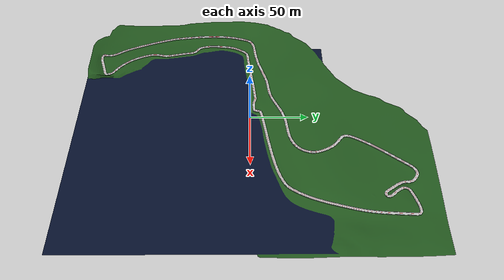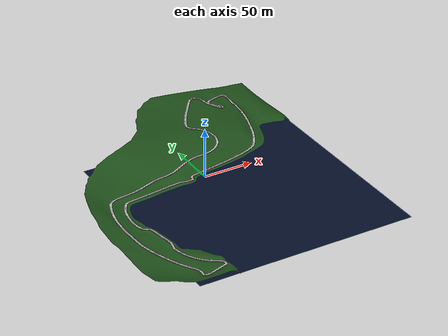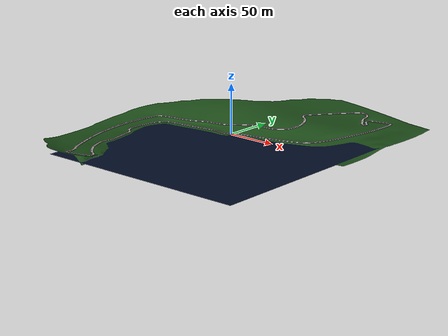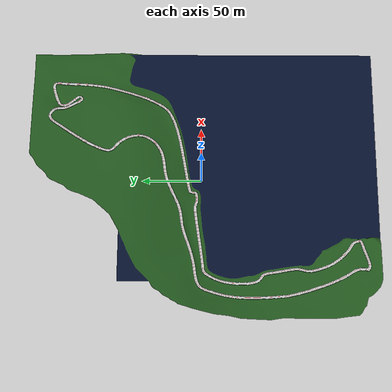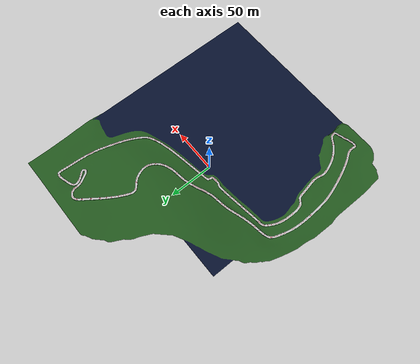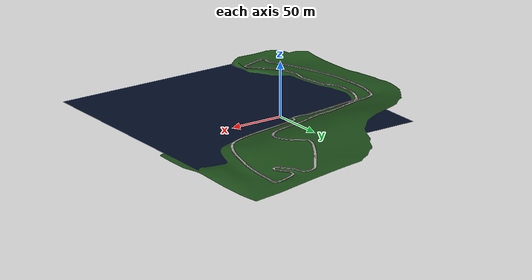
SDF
<?xml version="1.0" ?>

<sdf version="1.9">
  <world name="default">
    <plugin
      filename="gz-sim-physics-system"
      name="gz::sim::systems::Physics">
    </plugin>
    <plugin
      filename="gz-sim-scene-broadcaster-system"
      name="gz::sim::systems::SceneBroadcaster">
    </plugin>
    <plugin
      filename="gz-sim-user-commands-system"
      name="gz::sim::systems::UserCommands">
    </plugin>
    <plugin
      filename="gz-sim-sensors-system"
      name="gz::sim::systems::Sensors">
      <render_engine>ogre2</render_engine>
    </plugin>
    <plugin name='gz::sim::systems::Contact' filename='gz-sim-contact-system'/>

    <scene>
      <ambient>0.4 0.4 0.4 1</ambient>
      <background>0.7 0.7 0.7 1</background>
      <shadows>true</shadows>
      <grid>false</grid>
      <sky>
        <clouds>
          <speed>12</speed>
        </clouds>
      </sky>
    </scene>
    <include>
      <uri>model://monaco</uri>
      <name>monaco</name>
      <pose>0 0 0 0 0 0</pose>
    </include>
    <light name='my_sun' type='directional'>
      <pose>0 0 10 0 0 0</pose>
      <cast_shadows>true</cast_shadows>
      <intensity>1</intensity>
      <direction>-0.5 0.1 -0.9</direction>
      <diffuse>0.8 0.8 0.8 1</diffuse>
      <specular>0.2 0.2 0.2 1</specular>
      <attenuation>
        <range>1000</range>
        <linear>0.01</linear>
        <constant>0.9</constant>
        <quadratic>0.001</quadratic>
      </attenuation>
      <spot>
        <inner_angle>0</inner_angle>
        <outer_angle>0</outer_angle>
        <falloff>0</falloff>
      </spot>
    </light>

    <!-- Robot -->
    <include>
      <pose>1 -1.5 10 0 0 0</pose>
      <name>turtlebot3_waffle</name>
      <uri>model://turtlebot3_waffle</uri>
    </include>
  </world>
</sdf>

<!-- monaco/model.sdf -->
<sdf version="1.7">
  <model name="circuito">
    <static>true</static> <!-- Cambia a false si es un objeto dinámico -->
    <link name="link">
      <visual name="grass">
        <geometry>
          <mesh>
            <uri>model://monaco/meshes/monaco.dae</uri>
            <scale>0.2 0.2 0.2</scale>
          </mesh>
        </geometry>
      </visual>

      <visual name="track">
        <geometry>
          <mesh>
            <uri>model://monaco/meshes/monaco_track.dae</uri>
            <scale>0.2 0.2 0.2</scale>
          </mesh>
        </geometry>
      </visual>

      <collision name="collision">
        <geometry>
          <mesh>
            <uri>model://monaco/meshes/monaco_track.dae</uri>
            <scale>0.2 0.2 0.2</scale>
          </mesh>
        </geometry>
      </collision>
    </link>
  </model>
</sdf>

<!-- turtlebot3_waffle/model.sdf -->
<sdf version="1.5">
  <model name="turtlebot3_waffle">
  <pose>0.0 0.0 0.0 0.0 0.0 0.0</pose>

    <link name="base_footprint"/>

    <link name="base_link">

      <inertial>
        <pose>-0.064 0 0.048 0 0 0</pose>
        <inertia>
          <ixx>4.2111447e-02</ixx>
          <ixy>0</ixy>
          <ixz>0</ixz>
          <iyy>4.2111447e-02</iyy>
          <iyz>0</iyz>
          <izz>7.5254874e-02</izz>
        </inertia>
        <mass>1.3729096e+00</mass>
      </inertial>

      <collision name="base_collision">
        <pose>-0.064 0 0.048 0 0 0</pose>
        <geometry>
          <box>
            <size>0.265 0.265 0.089</size>
          </box>
        </geometry>
      </collision>

      <visual name="base_visual">
        <pose>-0.064 0 0 0 0 0</pose>
        <geometry>
          <mesh>
            <uri>model://turtlebot3_common/meshes/waffle_base.dae</uri>
            <scale>0.001 0.001 0.001</scale>
          </mesh>
        </geometry>
        <material>
          <ambient>1 1 1 1</ambient>
          <diffuse>1 1 1 1</diffuse>
          <specular>0.2 0.2 0.2 1</specular>
          <emissive>0 0 0 1</emissive>
        </material>
      </visual>
    </link>

    <link name="imu_link">
      <sensor name="tb3_imu" type="imu">
        <always_on>true</always_on>
        <update_rate>200</update_rate>
        <topic>imu</topic>
        <imu>
          <angular_velocity>
            <x>
              <noise type="gaussian">
                <mean>0.0</mean>
                <stddev>2e-4</stddev>
              </noise>
            </x>
            <y>
              <noise type="gaussian">
                <mean>0.0</mean>
                <stddev>2e-4</stddev>
              </noise>
            </y>
            <z>
              <noise type="gaussian">
                <mean>0.0</mean>
                <stddev>2e-4</stddev>
              </noise>
            </z>
          </angular_velocity>
          <linear_acceleration>
            <x>
              <noise type="gaussian">
                <mean>0.0</mean>
                <stddev>1.7e-2</stddev>
              </noise>
            </x>
            <y>
              <noise type="gaussian">
                <mean>0.0</mean>
                <stddev>1.7e-2</stddev>
              </noise>
            </y>
            <z>
              <noise type="gaussian">
                <mean>0.0</mean>
                <stddev>1.7e-2</stddev>
              </noise>
            </z>
          </linear_acceleration>
        </imu>
      </sensor>
    </link>

    <link name="base_scan">
      <inertial>
        <pose>-0.052 0 0.111 0 0 0</pose>
        <inertia>
          <ixx>0.001</ixx>
          <ixy>0.000</ixy>
          <ixz>0.000</ixz>
          <iyy>0.001</iyy>
          <iyz>0.000</iyz>
          <izz>0.001</izz>
        </inertia>
        <mass>0.114</mass>
      </inertial>

      <collision name="lidar_sensor_collision">
        <pose>-0.052 0 0.111 0 0 0</pose>
        <geometry>
          <cylinder>
            <radius>0.0508</radius>
            <length>0.055</length>
          </cylinder>
        </geometry>
      </collision>

      <visual name="lidar_sensor_visual">
        <pose>-0.064 0 0.121 0 0 0</pose>
        <geometry>
          <mesh>
            <uri>model://turtlebot3_common/meshes/lds.dae</uri>
            <scale>0.001 0.001 0.001</scale>
          </mesh>
        </geometry>
        <material>
          <ambient>1 1 1 1</ambient>
          <diffuse>1 1 1 1</diffuse>
          <specular>0.2 0.2 0.2 1</specular>
          <emissive>0 0 0 1</emissive>
        </material>
      </visual>

      <sensor name="hls_lfcd_lds" type="gpu_lidar">
        <always_on>true</always_on>
        <visualize>true</visualize>
        <pose>-0.064 0 0.121 0 0 0</pose>
        <update_rate>5</update_rate>
        <topic>scan</topic>
        <gz_frame_id>base_scan</gz_frame_id>
        <lidar>
          <scan>
            <horizontal>
              <samples>360</samples>
              <resolution>1.000000</resolution>
              <min_angle>0.000000</min_angle>
              <max_angle>6.280000</max_angle>
            </horizontal>
          </scan>
          <range>
            <min>0.20000</min>
            <max>3.5</max>
            <resolution>0.015000</resolution>
          </range>
        </lidar>
      </sensor>
    </link>

    <link name="wheel_left_link">

      <inertial>
        <pose>0.0 0.144 0.023 -1.57 0 0</pose>
        <inertia>
          <ixx>1.1175580e-05</ixx>
          <ixy>-4.2369783e-11</ixy>
          <ixz>-5.9381719e-09</ixz>
          <iyy>1.1192413e-05</iyy>
          <iyz>-1.4400107e-11</iyz>
          <izz>2.0712558e-05</izz>
        </inertia>
        <mass>0.1</mass>
      </inertial>

      <collision name="wheel_left_collision">
        <pose>0.0 0.144 0.023 -1.57 0 0</pose>
        <geometry>
          <cylinder>
            <radius>0.033</radius>
            <length>0.018</length>
          </cylinder>
        </geometry>
        <surface>
          <!-- This friction pamareter don't contain reliable data!! -->
          <friction>
            <ode>
              <mu>100000.0</mu>
              <mu2>100000.0</mu2>
              <fdir1>0 0 0</fdir1>
              <slip1>0.0</slip1>
              <slip2>0.0</slip2>
            </ode>
          </friction>
          <contact>
            <ode>
              <soft_cfm>0</soft_cfm>
              <soft_erp>0.2</soft_erp>
              <kp>1e+5</kp>
              <kd>1</kd>
              <max_vel>0.01</max_vel>
              <min_depth>0.001</min_depth>
            </ode>
          </contact>
        </surface>
      </collision>

      <visual name="wheel_left_visual">
        <pose>0.0 0.144 0.023 0 0 0</pose>
        <geometry>
          <mesh>
            <uri>model://turtlebot3_common/meshes/tire.dae</uri>
            <scale>0.001 0.001 0.001</scale>
          </mesh>
        </geometry>
        <material>
          <ambient>1 1 1 1</ambient>
          <diffuse>1 1 1 1</diffuse>
          <specular>0.2 0.2 0.2 1</specular>
          <emissive>0 0 0 1</emissive>
        </material>
      </visual>
    </link>

    <link name="wheel_right_link">

      <inertial>
        <pose>0.0 -0.144 0.023 -1.57 0 0</pose>
        <inertia>
          <ixx>1.1175580e-05</ixx>
          <ixy>-4.2369783e-11</ixy>
          <ixz>-5.9381719e-09</ixz>
          <iyy>1.1192413e-05</iyy>
          <iyz>-1.4400107e-11</iyz>
          <izz>2.0712558e-05</izz>
        </inertia>
        <mass>0.1</mass>
      </inertial>

      <collision name="wheel_right_collision">
        <pose>0.0 -0.144 0.023 -1.57 0 0</pose>
        <geometry>
          <cylinder>
            <radius>0.033</radius>
            <length>0.018</length>
          </cylinder>
        </geometry>
        <surface>
          <!-- This friction pamareter don't contain reliable data!! -->
          <friction>
            <ode>
              <mu>100000.0</mu>
              <mu2>100000.0</mu2>
              <fdir1>0 0 0</fdir1>
              <slip1>0.0</slip1>
              <slip2>0.0</slip2>
            </ode>
          </friction>
          <contact>
            <ode>
              <soft_cfm>0</soft_cfm>
              <soft_erp>0.2</soft_erp>
              <kp>1e+5</kp>
              <kd>1</kd>
              <max_vel>0.01</max_vel>
              <min_depth>0.001</min_depth>
            </ode>
          </contact>
        </surface>
      </collision>

      <visual name="wheel_right_visual">
        <pose>0.0 -0.144 0.023 0 0 0</pose>
        <geometry>
          <mesh>
            <uri>model://turtlebot3_common/meshes/tire.dae</uri>
            <scale>0.001 0.001 0.001</scale>
          </mesh>
        </geometry>
        <material>
          <ambient>1 1 1 1</ambient>
          <diffuse>1 1 1 1</diffuse>
          <specular>0.2 0.2 0.2 1</specular>
          <emissive>0 0 0 1</emissive>
        </material>
      </visual>
    </link>

    <link name='caster_back_right_link'>
      <pose>-0.177 -0.064 -0.004 -1.57 0 0</pose>
      <inertial>
        <mass>0.001</mass>
        <inertia>
          <ixx>0.00001</ixx>
          <ixy>0.000</ixy>
          <ixz>0.000</ixz>
          <iyy>0.00001</iyy>
          <iyz>0.000</iyz>
          <izz>0.00001</izz>
        </inertia>
      </inertial>
      <collision name='collision'>
        <geometry>
          <sphere>
            <radius>0.005000</radius>
          </sphere>
        </geometry>
        <surface>
          <contact>
            <ode>
              <soft_cfm>0</soft_cfm>
              <soft_erp>0.2</soft_erp>
              <kp>1e+5</kp>
              <kd>1</kd>
              <max_vel>0.01</max_vel>
              <min_depth>0.001</min_depth>
            </ode>
          </contact>
        </surface>
      </collision>
    </link>

    <link name='caster_back_left_link'>
      <pose>-0.177 0.064 -0.004 -1.57 0 0</pose>
      <inertial>
        <mass>0.001</mass>
        <inertia>
          <ixx>0.00001</ixx>
          <ixy>0.000</ixy>
          <ixz>0.000</ixz>
          <iyy>0.00001</iyy>
          <iyz>0.000</iyz>
          <izz>0.00001</izz>
        </inertia>
      </inertial>
      <collision name='collision'>
        <geometry>
          <sphere>
            <radius>0.005000</radius>
          </sphere>
        </geometry>
        <surface>
          <contact>
            <ode>
              <soft_cfm>0</soft_cfm>
              <soft_erp>0.2</soft_erp>
              <kp>1e+5</kp>
              <kd>1</kd>
              <max_vel>0.01</max_vel>
              <min_depth>0.001</min_depth>
            </ode>
          </contact>
        </surface>
      </collision>
    </link>

    <link name="camera_link"/>

    <link name="camera_rgb_frame">
      <inertial>
        <pose>0.069 -0.047 0.107 0 -0.35 0</pose>
        <inertia>
          <ixx>0.001</ixx>
          <ixy>0.000</ixy>
          <ixz>0.000</ixz>
          <iyy>0.001</iyy>
          <iyz>0.000</iyz>
          <izz>0.001</izz>
        </inertia>
        <mass>0.035</mass>
      </inertial>

      <pose>0.069 -0.047 0.107 0 -0.35 0</pose>
      <sensor name="camera" type="camera">
        <always_on>true</always_on>
        <visualize>true</visualize>
        <update_rate>30</update_rate>
        <topic>camera/image_raw</topic>
        <gz_frame_id>camera_rgb_frame</gz_frame_id>
        <camera name="intel_realsense_r200">
          <camera_info_topic>camera/camera_info</camera_info_topic>
          <horizontal_fov>1.02974</horizontal_fov>
          <image>
            <width>1920</width>
            <height>1080</height>
            <format>R8G8B8</format>
          </image>
          <clip>
            <near>0.02</near>
            <far>300</far>
          </clip>
          <noise>
            <type>gaussian</type>
            <mean>0.0</mean>
            <stddev>0.007</stddev>
          </noise>
        </camera>
      </sensor>
    </link>

    <link name="camera_depth_frame">
      <inertial>
        <pose>0.069 -0.047 0.107 0 0 0</pose>
        <inertia>
          <ixx>0.001</ixx>
          <ixy>0.000</ixy>
          <ixz>0.000</ixz>
          <iyy>0.001</iyy>
          <iyz>0.000</iyz>
          <izz>0.001</izz>
        </inertia>
        <mass>0.035</mass>
      </inertial>

      <pose>0.069 -0.047 0.107 0 0 0</pose>
      <sensor name="camera_ir" type="depth_camera">
        <always_on>true</always_on>
        <visualize>true</visualize>
        <update_rate>10</update_rate>
        <topic>camera/depth</topic>
        <gz_frame_id>camera_depth_frame</gz_frame_id>
        <camera>
          <camera_info_topic>camera/camera_info</camera_info_topic>
          <horizontal_fov>1.02974</horizontal_fov>
          <image>
            <width>1920</width>
            <height>1020</height>
            <format>R_FLOAT32</format>
          </image>
          <clip>
            <near>0.1</near>
            <far>300.0</far>
          </clip>
        </camera>
      </sensor>
    </link>

    <joint name="base_joint" type="fixed">
      <parent>base_footprint</parent>
      <child>base_link</child>
      <pose>0.0 0.0 0.010 0 0 0</pose>
    </joint>

    <joint name="wheel_left_joint" type="revolute">
      <parent>base_link</parent>
      <child>wheel_left_link</child>
      <pose>0.0 0.144 0.023 -1.57 0 0</pose>
      <axis>
        <xyz>0 0 1</xyz>
        <limit>
          <effort>20</effort>
        </limit>
      </axis>
    </joint>

    <joint name="wheel_right_joint" type="revolute">
      <parent>base_link</parent>
      <child>wheel_right_link</child>
      <pose>0.0 -0.144 0.023 -1.57 0 0</pose>
      <axis>
        <xyz>0 0 1</xyz>
        <limit>
          <effort>20</effort>
        </limit>
      </axis>
    </joint>

    <joint name='caster_back_right_joint' type='ball'>
      <parent>base_link</parent>
      <child>caster_back_right_link</child>
    </joint>

    <joint name='caster_back_left_joint' type='ball'>
      <parent>base_link</parent>
      <child>caster_back_left_link</child>
    </joint>

    <joint name="imu_joint" type="fixed">
      <parent>base_link</parent>
      <child>imu_link</child>
      <pose>-0.032 0 0.068 0 0 0</pose>
      <axis>
        <xyz>0 0 1</xyz>
      </axis>
    </joint>

    <joint name="lidar_joint" type="fixed">
      <parent>base_link</parent>
      <child>base_scan</child>
      <pose>-0.064 0 0.121 0 0 0</pose>
      <axis>
        <xyz>0 0 1</xyz>
      </axis>
    </joint>

    <joint name="camera_joint" type="fixed">
      <parent>base_link</parent>
      <child>camera_link</child>
      <pose>0.064 -0.065 0.094 0 0 0</pose>
      <axis>
        <xyz>0 0 1</xyz>
      </axis>
    </joint>

    <joint name="camera_rgb_joint" type="fixed">
      <parent>camera_link</parent>
      <child>camera_rgb_frame</child>
      <pose>0.005 0.018 0.013 0 0 0</pose>
      <axis>
        <xyz>0 0 1</xyz>
      </axis>
    </joint>

    <joint name="camera_depth_joint" type="fixed">
      <parent>camera_link</parent>
      <child>camera_depth_frame</child>
      <pose>0.005 0.018 0.013 0 0 0</pose>
      <axis>
        <xyz>0 0 1</xyz>
      </axis>
    </joint>

    <plugin filename="gz-sim-diff-drive-system" name="gz::sim::systems::DiffDrive">
      <!-- wheels -->
      <left_joint>wheel_left_joint</left_joint>
      <right_joint>wheel_right_joint</right_joint>

      <!-- kinematics -->
      <wheel_separation>0.287</wheel_separation>
      <wheel_radius>0.033</wheel_radius>

      <!-- limits -->
      <max_linear_acceleration>1.0</max_linear_acceleration>

      <topic>cmd_vel</topic>

      <odom_topic>odom</odom_topic>
      <frame_id>odom</frame_id>
      <tf_topic>/tf</tf_topic>
      <odom_publisher_frequency>30</odom_publisher_frequency>
      <child_frame_id>base_footprint</child_frame_id>

    </plugin>

    <plugin filename="gz-sim-joint-state-publisher-system"
      name="gz::sim::systems::JointStatePublisher">
      <topic>joint_states</topic>
      <joint_name>wheel_left_joint</joint_name>
      <joint_name>wheel_right_joint</joint_name>
    </plugin>

  </model>
</sdf>
